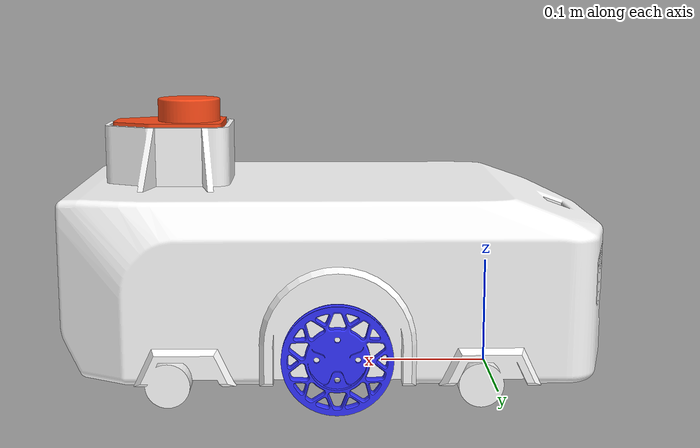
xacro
<?xml version="1.0"?>
<robot xmlns:xacro="http://www.ros.org/wiki/xacro" >

    <xacro:include filename="inertial_macros.xacro"/>
   <xacro:property name="scale_ratio" value="0.0015" />

    <material name="white">
        <color rgba="1 1 1 1" />
    </material>

    <material name="orange">
        <color rgba="1 0.3 0.1 1"/>
    </material>

    <material name="blue">
        <color rgba="0.2 0.2 1 1"/>
    </material>

    <material name="black">
        <color rgba="0 0 0 1"/>
    </material>

    <!-- BASE LINK -->

    <link name="base_link">

    </link>

    <!-- CHASSIS LINK -->

    <joint name="chassis_joint" type="fixed">
        <parent link="base_link"/>
        <child link="chassis"/>
        <origin xyz="-0.1 0 0"/>
    </joint>

    <link name="chassis">
        <visual>
            <origin xyz="0 0.15 0" rpy="1.57 0 0"/>
            <geometry>
                <mesh scale="${scale_ratio} ${scale_ratio} ${scale_ratio}" filename="file:///home/samet/Desktop/develop/education_robot_ws/src/education_robot/description/meshes/body.stl" />
            </geometry>
            <material name="white"/>
        </visual>
        <collision>
            <origin xyz="0.25 0 0.075"/>
            <geometry>
                <box size="0.5 0.3 0.15"/>
            </geometry>
        </collision>
        <xacro:inertial_box mass="0.5" x="0.3" y="0.3" z="0.15">
            <origin xyz="0.15 0 0.075" rpy="0 0 0"/>
        </xacro:inertial_box>
    </link>
    <gazebo reference="chassis">
    <material>Gazebo/Gray</material>
    </gazebo>

    <!-- LEFT WHEEL LINK -->

    <joint name="left_wheel_joint" type="continuous">
        <parent link="base_link"/>
        <child link="left_wheel"/>
        <origin xyz="0.145 0.14 0.04" rpy="-${pi/2} 0 0" />
        <axis xyz="0 0 1"/>
    </joint>

    <link name="left_wheel">
        <visual>
            <geometry>
                <mesh scale="${scale_ratio} ${scale_ratio} ${scale_ratio}" filename="file:///home/samet/Desktop/develop/education_robot_ws/src/education_robot/description/meshes/wheel.stl" />
            </geometry>
            <material name="blue"/>
            <origin xyz="-0.049 -0.049 0" rpy="0 ${pi/2} 0" />

        </visual>
        <collision>
            <geometry>
                <cylinder radius="0.05" length="0.04"/>
            </geometry>
        </collision>
        <xacro:inertial_cylinder mass="0.1" length="0.04" radius="0.05">
            <origin xyz="0 0 0" rpy="0 0 0"/>
        </xacro:inertial_cylinder>
    </link>
    <gazebo reference="left_wheel">
    <material>Gazebo/Black</material>
    </gazebo>
    <!-- RIGHT WHEEL LINK -->

    <joint name="right_wheel_joint" type="continuous">
        <parent link="base_link"/>
        <child link="right_wheel"/>
        <origin xyz="0.145 -0.14 0.04" rpy="-${pi/2} 0 0" />
        <axis xyz="0 0 1"/>
    </joint>

    <link name="right_wheel">
        <visual>
            <geometry>
                <mesh scale="${scale_ratio} ${scale_ratio} ${scale_ratio}" filename="file:///home/samet/Desktop/develop/education_robot_ws/src/education_robot/description/meshes/wheel.stl" />
            </geometry>
            <origin xyz="-0.049 -0.049 0" rpy="0 ${pi/2} 0" />
            <material name="blue"/>
        </visual>
        <collision>
            <geometry>
                <cylinder radius="0.05" length="0.04"/>
            </geometry>
        </collision>
        <xacro:inertial_cylinder mass="0.1" length="0.04" radius="0.05">
            <origin xyz="0 0 0" rpy="0 0 0"/>
        </xacro:inertial_cylinder>
    </link>
    <gazebo reference="right_wheel">
    <material>Gazebo/Black</material>
    </gazebo>
    <joint name="lidar_joint" type="fixed">
        <parent link="chassis"/>
        <child link="lidar_link"/>
        <origin xyz="0.4 0 0.2"/>
    </joint>
    <link name="lidar_link">
        <visual>
            <origin xyz="-0.05 0.03 -0.02" rpy="1.57 0 0"/>
            <geometry>
                <mesh scale="${scale_ratio} ${scale_ratio} ${scale_ratio}" filename="file:///home/samet/Desktop/develop/education_robot_ws/src/education_robot/description/meshes/lidar.stl" />
            </geometry>
            <material name="orange"/>
        </visual>
        <collision>
            <origin xyz="0 0 0"/>
            <geometry>
                <box size="0.05 0.05 0.05"/>
            </geometry>
        </collision>
        <xacro:inertial_box mass="0.1" x="0.05" y="0.05" z="0.05">
            <origin xyz="0.15 0 0.075" rpy="0 0 0"/>
        </xacro:inertial_box>
    </link>
    <gazebo reference="lidar_link">
    <material>Gazebo/Black</material>
    </gazebo>
    <!-- CASTER WHEEL LINK -->

</robot>
